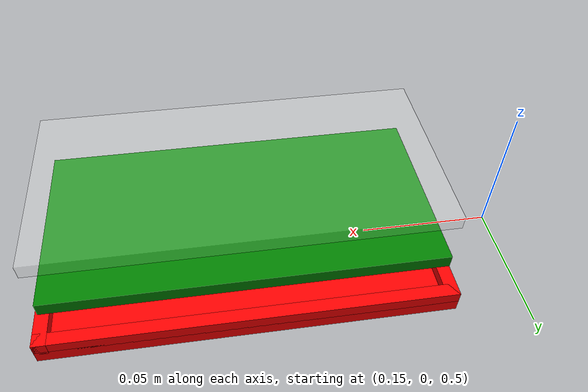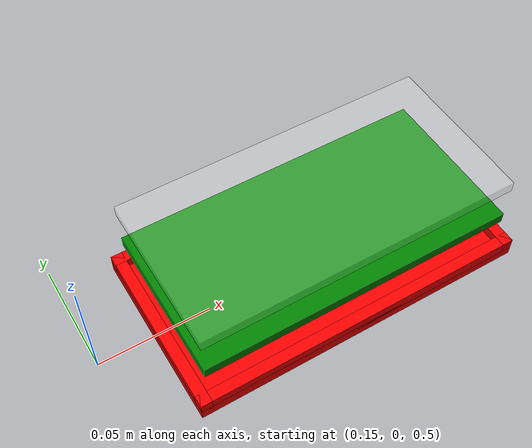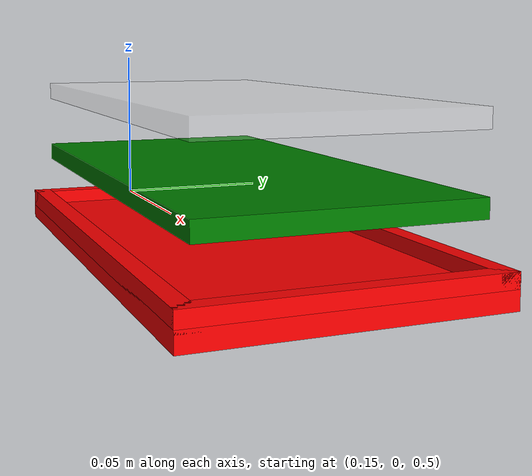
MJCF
<mujoco model="phone">

  <asset>
    <texture file="./textures/ele2_sk.png" type="2d" name="texplane" gridsize="5 5"/>
    <material name="pcb" reflectance="1" shininess="1.0" specular="0.0" texrepeat="1 1" texture="texplane" texuniform="true" />
  </asset>

  <default>
    <joint damping=".3" axis="0 1 0"/>
    <geom type="box" friction=".5"/>
    <default class="phone_wall">
      <geom rgba="1.0 0 0 1.0" type="box" friction=".5"/>
    </default>
  </default>
  <worldbody>
    <body name="cover" pos="0.25 0 0.5">
      <freejoint name="cover_root" />

      <geom size=".075 .04 .0025" pos="0 0 0" class="phone_wall" />

        <geom size=".0025 .04 .0025" pos="-0.0725 0 .004" class="phone_wall"/>
        <geom size=".0025 .04 .0025" pos=" 0.0725  0 .004" class="phone_wall"/>

        <geom size=".075 .0025 .0025" pos="0 -0.0375 .004" class="phone_wall"/>
        <geom size=".075 .0025 .0025" pos="0  0.0375 .004" class="phone_wall"/>

    </body>

    <body name="pcb" pos="0.25 0 0.52">
      <freejoint name="pcb_root" />

      <geom size=".07 .035 .0025" pos="0 0 0" rgba="0.0 0.5 0 1.0" type="box" friction=".5"/>

    </body>

    <body name="screen" pos="0.25 0 0.54">
      <freejoint name="screen_root" />

      <geom size=".07 .035 .0025" pos="0 0 0" rgba="1.0 1.0 1.0 0.2" type="box" friction=".5"/>

    </body>

  </worldbody>

</mujoco>
